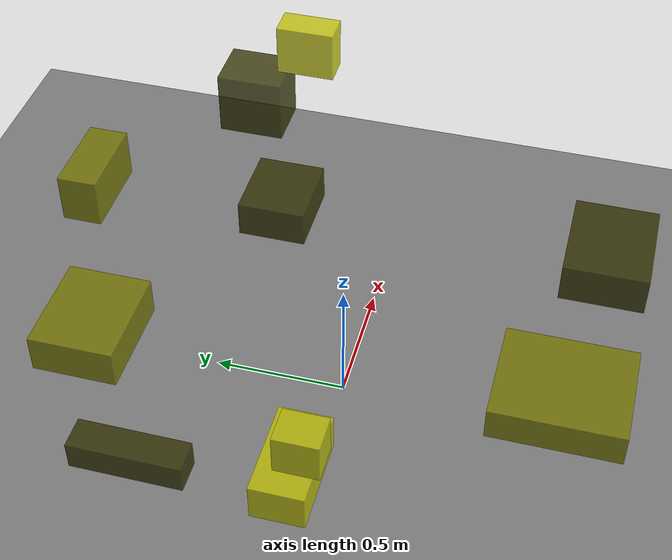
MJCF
<?xml version="1.0"?>
<mujoco model="obstacle_scene">
  <compiler angle="radian" coordinate="local"/>
  <option timestep="0.001" gravity="0 0 -9.81"/>

  <asset>
    <material name="obstacle_mat" rgba="0.8 0.8 0.0 0.8"/>
    <material name="ground_mat" rgba="0.5 0.5 0.5 1"/>
  </asset>

  <worldbody>
    <!-- Ground plane -->
    <geom name="ground" type="plane" size="3 3 0.1" material="ground_mat"/>

    <!-- Obstacles -->
    <body name="obstacle_0" pos="-0.837422 0.491219 0.453910">
      <geom name="obs_0" type="box" size="0.056930 0.195767 0.051950" rgba="0.2 0.2 0.0 0.8"/>
    </body>
    <body name="obstacle_1" pos="-0.781392 -0.826793 1.080376">
      <geom name="obs_1" type="box" size="0.159679 0.188916 0.050493" rgba="0.5 0.5 0.0 0.8"/>
    </body>
    <body name="obstacle_2" pos="-0.958075 -0.124824 0.848847">
      <geom name="obs_2" type="box" size="0.059715 0.072270 0.069396" rgba="0.8 0.8 0.0 0.8"/>
    </body>
    <body name="obstacle_3" pos="0.010315 -0.888305 0.899389">
      <geom name="obs_3" type="box" size="0.167898 0.136931 0.066533" rgba="0.2 0.2 0.0 0.8"/>
    </body>
    <body name="obstacle_4" pos="-0.114524 0.838995 0.968017">
      <geom name="obs_4" type="box" size="0.142355 0.066292 0.084685" rgba="0.5 0.5 0.0 0.8"/>
    </body>
    <body name="obstacle_5" pos="-0.469417 0.064676 0.078033">
      <geom name="obs_5" type="box" size="0.190783 0.102895 0.077237" rgba="0.8 0.8 0.0 0.8"/>
    </body>
    <body name="obstacle_6" pos="0.552176 0.396314 0.398596">
      <geom name="obs_6" type="box" size="0.150617 0.131675 0.071852" rgba="0.2 0.2 0.0 0.8"/>
    </body>
    <body name="obstacle_7" pos="-0.315173 0.838636 0.442431">
      <geom name="obs_7" type="box" size="0.189398 0.155476 0.073147" rgba="0.5 0.5 0.0 0.8"/>
    </body>
    <body name="obstacle_8" pos="0.445355 0.243622 1.224697">
      <geom name="obs_8" type="box" size="0.052356 0.099359 0.088002" rgba="0.8 0.8 0.0 0.8"/>
    </body>
    <body name="obstacle_9" pos="0.618445 0.499536 0.853189">
      <geom name="obs_9" type="box" size="0.097130 0.119889 0.117844" rgba="0.2 0.2 0.0 0.8"/>
    </body>
  </worldbody>
</mujoco>
